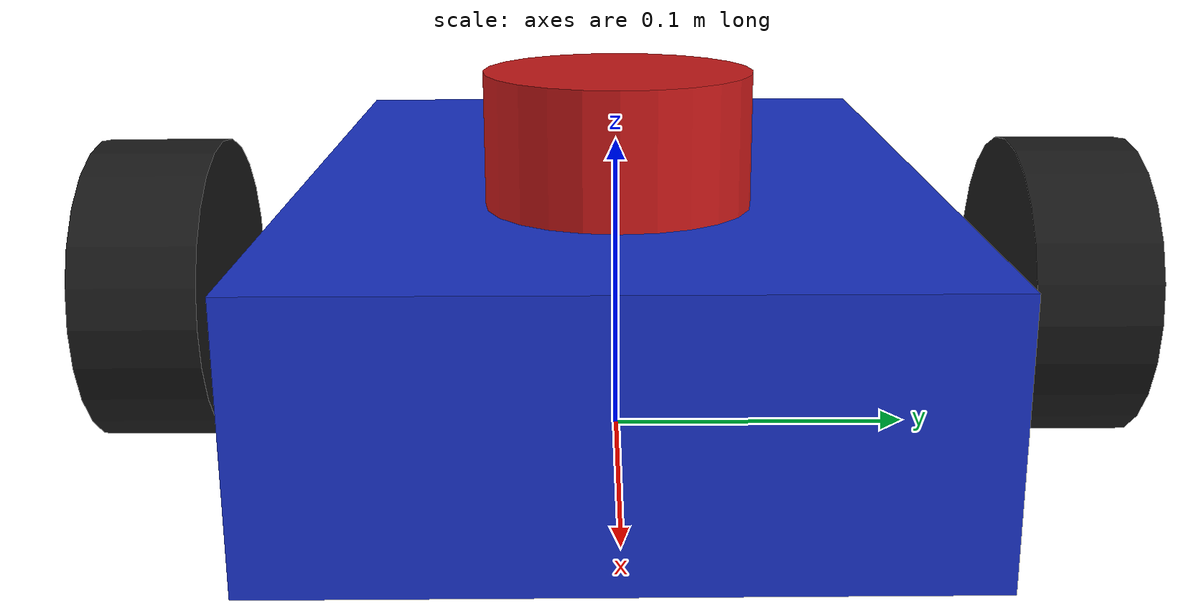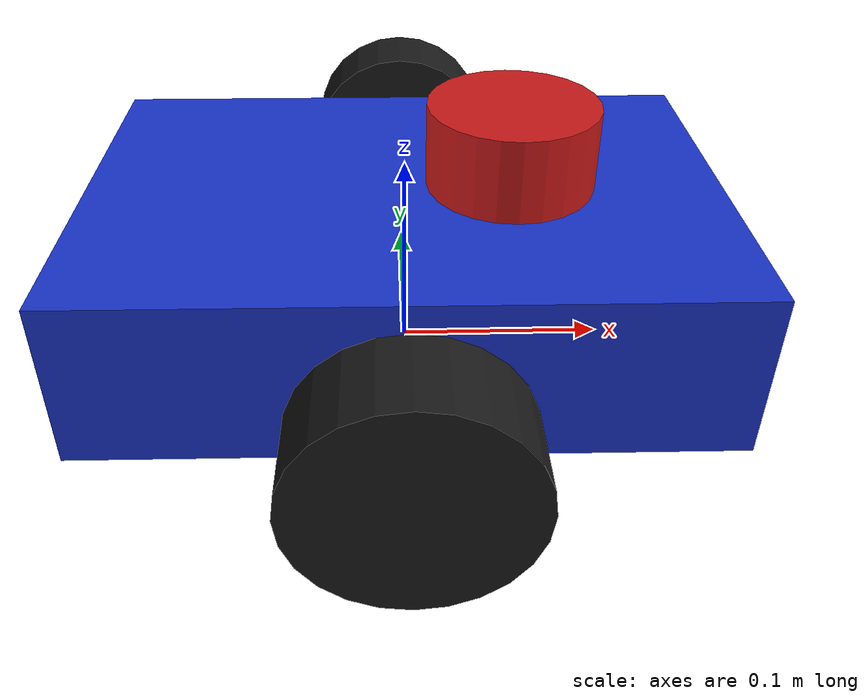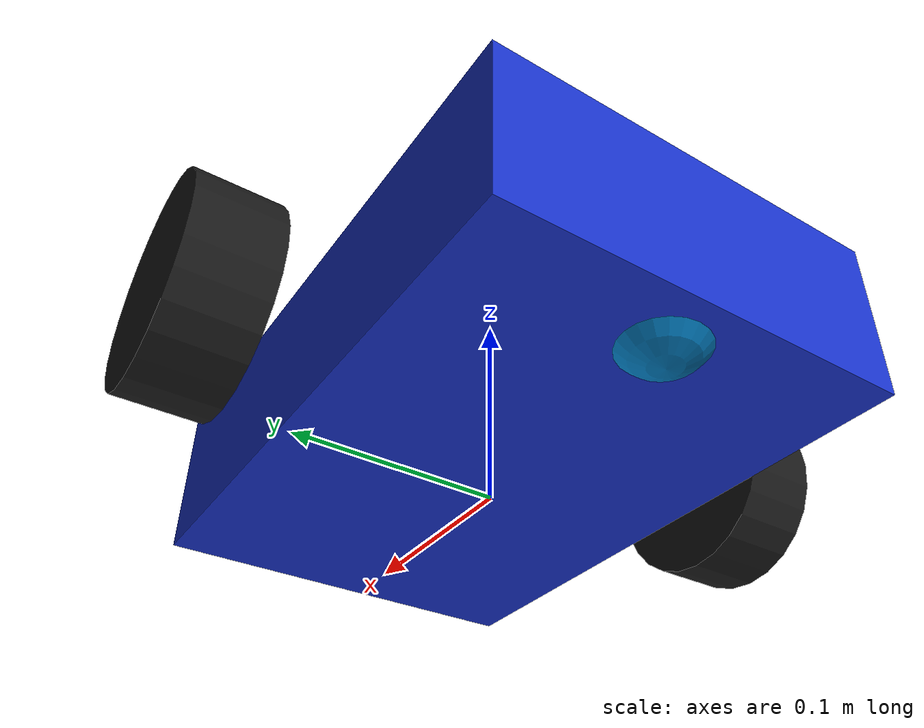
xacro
<?xml version="1.0"?>
<robot xmlns:xacro="http://www.ros.org/wiki/xacro" name="diffbot">
  <xacro:property name="wheel_r" value="0.05"/>
  <xacro:property name="wheel_w" value="0.04"/>
  <xacro:property name="sep" value="0.30"/>

  <xacro:macro name="box_inertial" params="m x y z">
    <inertial><mass value="${m}"/>
      <inertia ixx="${m*(y*y+z*z)/12}" iyy="${m*(x*x+z*z)/12}" izz="${m*(x*x+y*y)/12}" ixy="0" ixz="0" iyz="0"/>
    </inertial>
  </xacro:macro>

  <link name="base_footprint"/>
  <joint name="footprint_joint" type="fixed">
    <parent link="base_footprint"/><child link="base_link"/><origin xyz="0 0 ${wheel_r}"/>
  </joint>

  <link name="base_link">
    <visual><geometry><box size="0.30 0.20 0.08"/></geometry><material name="blue"><color rgba="0.1 0.2 0.8 1"/></material></visual>
    <collision><geometry><box size="0.30 0.20 0.08"/></geometry></collision>
    <xacro:box_inertial m="2.0" x="0.30" y="0.20" z="0.08"/>
  </link>

  <xacro:macro name="wheel" params="name y">
    <link name="${name}_wheel">
      <visual><origin rpy="1.5708 0 0"/><geometry><cylinder radius="${wheel_r}" length="${wheel_w}"/></geometry><material name="black"><color rgba="0.1 0.1 0.1 1"/></material></visual>
      <collision><origin rpy="1.5708 0 0"/><geometry><cylinder radius="${wheel_r}" length="${wheel_w}"/></geometry></collision>
      <inertial><origin rpy="1.5708 0 0"/><mass value="0.2"/>
        <inertia ixx="${0.2*(3*wheel_r*wheel_r+wheel_w*wheel_w)/12}" iyy="${0.2*(3*wheel_r*wheel_r+wheel_w*wheel_w)/12}" izz="${0.2*wheel_r*wheel_r/2}" ixy="0" ixz="0" iyz="0"/>
      </inertial>
    </link>
    <joint name="${name}_wheel_joint" type="continuous">
      <parent link="base_link"/><child link="${name}_wheel"/>
      <origin xyz="0 ${y} 0"/><axis xyz="0 1 0"/>
    </joint>
  </xacro:macro>
  <xacro:wheel name="left" y="${sep/2}"/>
  <xacro:wheel name="right" y="${-sep/2}"/>

  <!-- Caster: frictionless sphere -->
  <link name="caster">
    <collision><geometry><sphere radius="0.025"/></geometry>
      <surface><friction><ode><mu>0</mu><mu2>0</mu2></ode></friction></surface></collision>
    <visual><geometry><sphere radius="0.025"/></geometry></visual>
    <inertial><mass value="0.1"/><inertia ixx="1e-5" iyy="1e-5" izz="1e-5" ixy="0" ixz="0" iyz="0"/></inertial>
  </link>
  <joint name="caster_joint" type="fixed">
    <parent link="base_link"/><child link="caster"/><origin xyz="-0.12 0 -0.025"/>
  </joint>

  <link name="lidar_link">
    <visual><geometry><cylinder radius="0.04" length="0.04"/></geometry><material name="red"><color rgba="0.8 0.1 0.1 1"/></material></visual>
    <inertial><mass value="0.1"/><inertia ixx="1e-4" iyy="1e-4" izz="1e-4" ixy="0" ixz="0" iyz="0"/></inertial>
  </link>
  <joint name="lidar_joint" type="fixed">
    <parent link="base_link"/><child link="lidar_link"/><origin xyz="0.05 0 0.06"/>
  </joint>

  <link name="imu_link"/>
  <joint name="imu_joint" type="fixed"><parent link="base_link"/><child link="imu_link"/></joint>

  <!-- Gazebo (gz sim, Jazzy) plugins -->
  <gazebo>
    <plugin filename="gz-sim-diff-drive-system" name="gz::sim::systems::DiffDrive">
      <left_joint>left_wheel_joint</left_joint>
      <right_joint>right_wheel_joint</right_joint>
      <wheel_separation>${sep}</wheel_separation>
      <wheel_radius>${wheel_r}</wheel_radius>
      <topic>cmd_vel</topic>
      <odom_topic>odom</odom_topic>
      <tf_topic>tf</tf_topic>
      <frame_id>odom</frame_id>
      <child_frame_id>base_footprint</child_frame_id>
      <odom_publish_frequency>30</odom_publish_frequency>
    </plugin>
    <plugin filename="gz-sim-joint-state-publisher-system" name="gz::sim::systems::JointStatePublisher"/>
  </gazebo>
  <gazebo reference="lidar_link">
    <sensor name="lidar" type="gpu_lidar">
      <gz_frame_id>lidar_link</gz_frame_id>
      <topic>scan</topic>
      <update_rate>10</update_rate>
      <always_on>true</always_on>
      <lidar><scan><horizontal><samples>360</samples><min_angle>-3.14159</min_angle><max_angle>3.14159</max_angle></horizontal></scan>
        <range><min>0.12</min><max>8.0</max></range></lidar>
    </sensor>
  </gazebo>
  <gazebo reference="imu_link">
    <sensor name="imu" type="imu"><gz_frame_id>imu_link</gz_frame_id><topic>imu</topic><update_rate>50</update_rate><always_on>true</always_on></sensor>
  </gazebo>
  <gazebo>
    <plugin filename="gz-sim-sensors-system" name="gz::sim::systems::Sensors"><render_engine>ogre2</render_engine></plugin>
    <plugin filename="gz-sim-imu-system" name="gz::sim::systems::Imu"/>
  </gazebo>
</robot>
